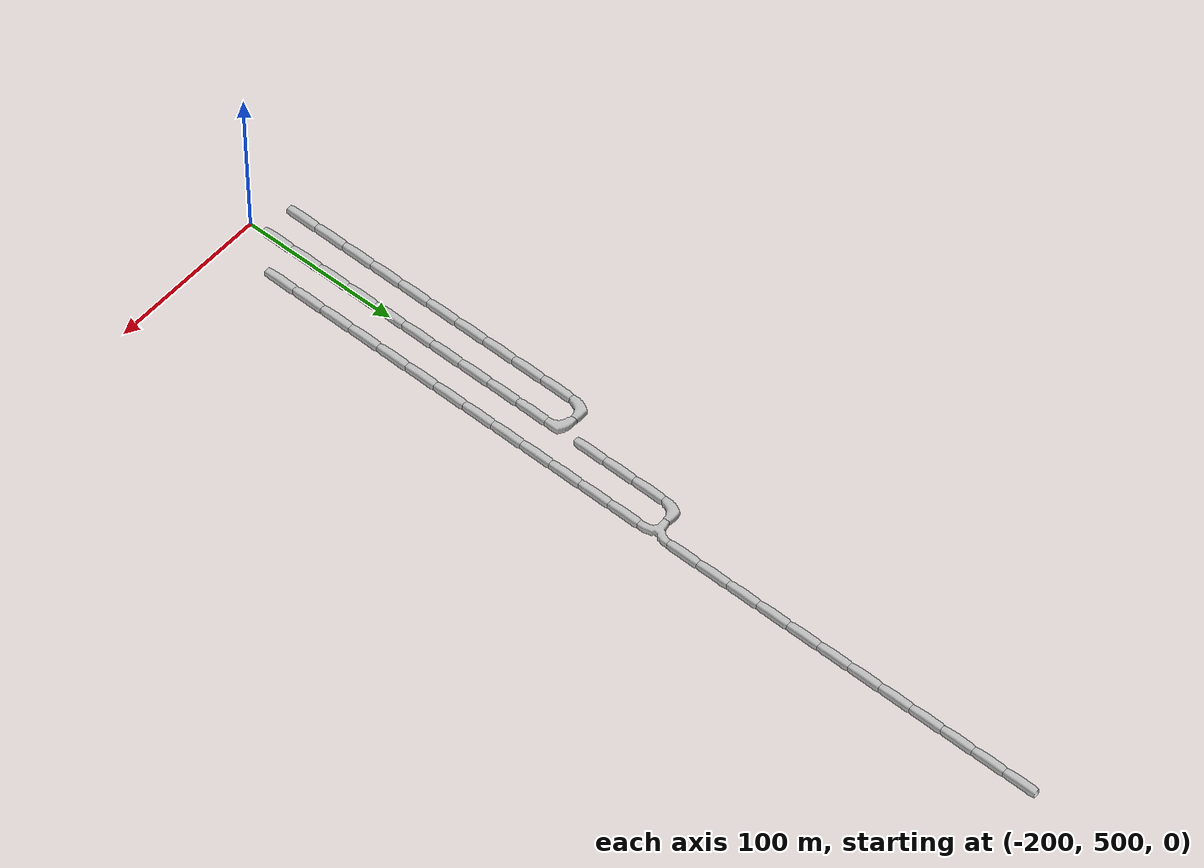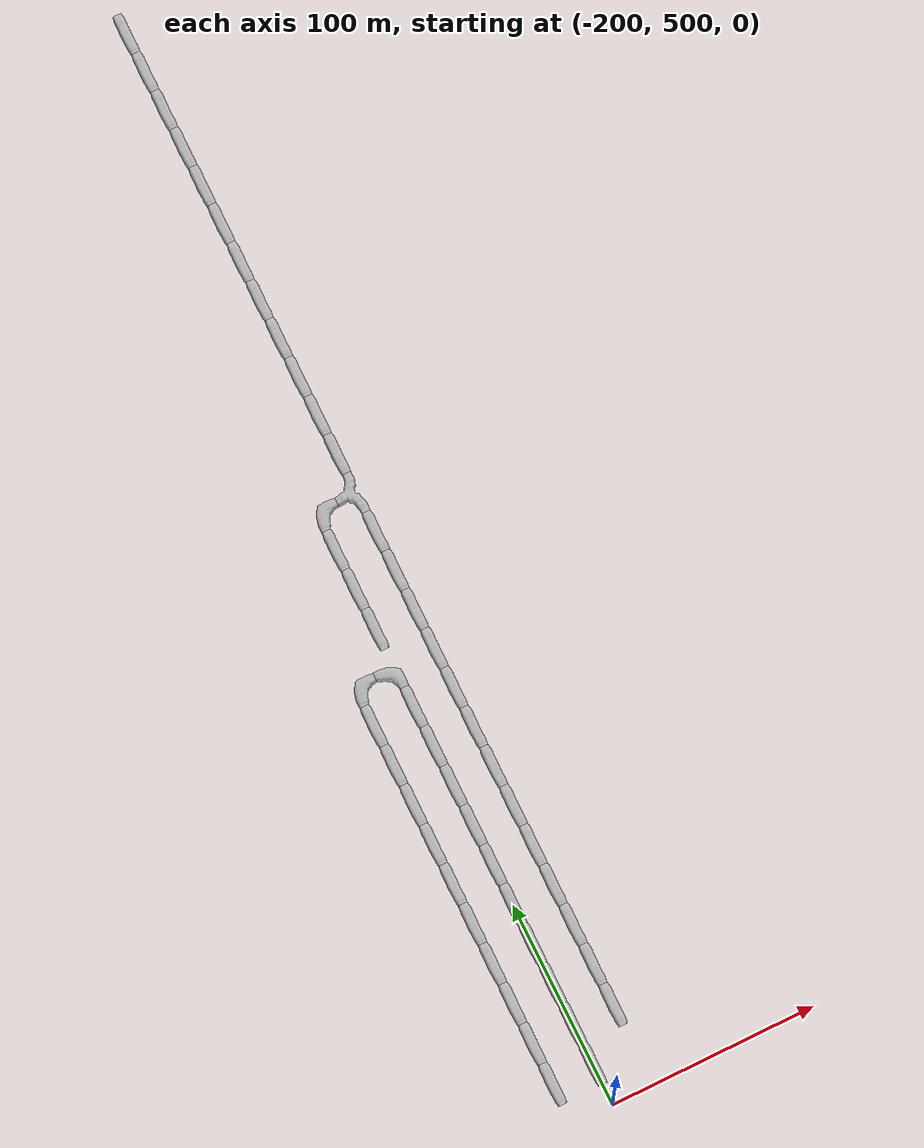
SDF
<sdf version="1.6">
 <world name="cave_8000_32">
  <include>
   <static>true</static>
   <name>cave_-9_27</name>
   <pose>-180 540 0 0 0 0.0</pose>
   <uri>model://cave_straight_20m</uri>
  </include>
  <include>
   <static>true</static>
   <name>cave_-9_28</name>
   <pose>-180 560 0 0 0 0.0</pose>
   <uri>model://cave_straight_20m</uri>
  </include>
  <include>
   <static>true</static>
   <name>cave_-9_29</name>
   <pose>-180 580 0 0 0 0.0</pose>
   <uri>model://cave_straight_20m</uri>
  </include>
  <include>
   <static>true</static>
   <name>cave_-9_30</name>
   <pose>-180 600 0 0 0 0.0</pose>
   <uri>model://cave_straight_20m</uri>
  </include>
  <include>
   <static>true</static>
   <name>cave_-9_31</name>
   <pose>-180 620 0 0 0 0.0</pose>
   <uri>model://cave_straight_20m</uri>
  </include>
  <include>
   <static>true</static>
   <name>cave_-9_32</name>
   <pose>-180 640 0 0 0 0.0</pose>
   <uri>model://cave_straight_20m</uri>
  </include>
  <include>
   <static>true</static>
   <name>cave_-9_33</name>
   <pose>-180 660 0 0 0 0.0</pose>
   <uri>model://cave_straight_20m</uri>
  </include>
  <include>
   <static>true</static>
   <name>cave_-9_34</name>
   <pose>-180 680 0 0 0 0.0</pose>
   <uri>model://cave_straight_20m</uri>
  </include>
  <include>
   <static>true</static>
   <name>cave_-9_35</name>
   <pose>-180 700 0 0 0 0.0</pose>
   <uri>model://cave_straight_20m</uri>
  </include>
  <include>
   <static>true</static>
   <name>cave_-9_36</name>
   <pose>-180 720 0 0 0 0.0</pose>
   <uri>model://cave_straight_20m</uri>
  </include>
  <include>
   <static>true</static>
   <name>cave_-9_37</name>
   <pose>-180 740 0 0 0 0.0</pose>
   <uri>model://cave_straight_20m</uri>
  </include>
  <include>
   <static>true</static>
   <name>cave_-9_38</name>
   <pose>-180 760 0 0 0 0.0</pose>
   <uri>model://cave_straight_20m</uri>
  </include>
  <include>
   <static>true</static>
   <name>cave_-9_39</name>
   <pose>-180 780 0 0 0 0.0</pose>
   <uri>model://cave_straight_20m</uri>
  </include>
  <include>
   <static>true</static>
   <name>cave_-9_40</name>
   <pose>-180 800 0 0 0 1.5707963267948966</pose>
   <uri>model://cave_3way_20m</uri>
  </include>
  <include>
   <static>true</static>
   <name>cave_-10_40</name>
   <pose>-200 800 0 0 0 -1.5707963267948966</pose>
   <uri>model://cave_L_20m</uri>
  </include>
  <include>
   <static>true</static>
   <name>cave_-10_39</name>
   <pose>-200 780 0 0 0 0.0</pose>
   <uri>model://cave_straight_20m</uri>
  </include>
  <include>
   <static>true</static>
   <name>cave_-10_38</name>
   <pose>-200 760 0 0 0 0.0</pose>
   <uri>model://cave_straight_20m</uri>
  </include>
  <include>
   <static>true</static>
   <name>cave_-10_37</name>
   <pose>-200 740 0 0 0 0.0</pose>
   <uri>model://cave_straight_20m</uri>
  </include>
  <include>
   <static>true</static>
   <name>cave_-9_41</name>
   <pose>-180 820 0 0 0 0.0</pose>
   <uri>model://cave_straight_20m</uri>
  </include>
  <include>
   <static>true</static>
   <name>cave_-9_42</name>
   <pose>-180 840 0 0 0 0.0</pose>
   <uri>model://cave_straight_20m</uri>
  </include>
  <include>
   <static>true</static>
   <name>cave_-9_43</name>
   <pose>-180 860 0 0 0 0.0</pose>
   <uri>model://cave_straight_20m</uri>
  </include>
  <include>
   <static>true</static>
   <name>cave_-9_44</name>
   <pose>-180 880 0 0 0 0.0</pose>
   <uri>model://cave_straight_20m</uri>
  </include>
  <include>
   <static>true</static>
   <name>cave_-9_45</name>
   <pose>-180 900 0 0 0 0.0</pose>
   <uri>model://cave_straight_20m</uri>
  </include>
  <include>
   <static>true</static>
   <name>cave_-9_46</name>
   <pose>-180 920 0 0 0 0.0</pose>
   <uri>model://cave_straight_20m</uri>
  </include>
  <include>
   <static>true</static>
   <name>cave_-9_47</name>
   <pose>-180 940 0 0 0 0.0</pose>
   <uri>model://cave_straight_20m</uri>
  </include>
  <include>
   <static>true</static>
   <name>cave_-9_48</name>
   <pose>-180 960 0 0 0 0.0</pose>
   <uri>model://cave_straight_20m</uri>
  </include>
  <include>
   <static>true</static>
   <name>cave_-9_49</name>
   <pose>-180 980 0 0 0 0.0</pose>
   <uri>model://cave_straight_20m</uri>
  </include>
  <include>
   <static>true</static>
   <name>cave_-9_50</name>
   <pose>-180 1000 0 0 0 0.0</pose>
   <uri>model://cave_straight_20m</uri>
  </include>
  <include>
   <static>true</static>
   <name>cave_-9_51</name>
   <pose>-180 1020 0 0 0 0.0</pose>
   <uri>model://cave_straight_20m</uri>
  </include>
  <include>
   <static>true</static>
   <name>cave_-9_52</name>
   <pose>-180 1040 0 0 0 0.0</pose>
   <uri>model://cave_straight_20m</uri>
  </include>
  <include>
   <static>true</static>
   <name>cave_-10_26</name>
   <pose>-200 520 0 0 0 0.0</pose>
   <uri>model://cave_straight_20m</uri>
  </include>
  <include>
   <static>true</static>
   <name>cave_-10_27</name>
   <pose>-200 540 0 0 0 0.0</pose>
   <uri>model://cave_straight_20m</uri>
  </include>
  <include>
   <static>true</static>
   <name>cave_-10_28</name>
   <pose>-200 560 0 0 0 0.0</pose>
   <uri>model://cave_straight_20m</uri>
  </include>
  <include>
   <static>true</static>
   <name>cave_-10_29</name>
   <pose>-200 580 0 0 0 0.0</pose>
   <uri>model://cave_straight_20m</uri>
  </include>
  <include>
   <static>true</static>
   <name>cave_-10_30</name>
   <pose>-200 600 0 0 0 0.0</pose>
   <uri>model://cave_straight_20m</uri>
  </include>
  <include>
   <static>true</static>
   <name>cave_-10_31</name>
   <pose>-200 620 0 0 0 0.0</pose>
   <uri>model://cave_straight_20m</uri>
  </include>
  <include>
   <static>true</static>
   <name>cave_-10_32</name>
   <pose>-200 640 0 0 0 0.0</pose>
   <uri>model://cave_straight_20m</uri>
  </include>
  <include>
   <static>true</static>
   <name>cave_-10_33</name>
   <pose>-200 660 0 0 0 0.0</pose>
   <uri>model://cave_straight_20m</uri>
  </include>
  <include>
   <static>true</static>
   <name>cave_-10_34</name>
   <pose>-200 680 0 0 0 0.0</pose>
   <uri>model://cave_straight_20m</uri>
  </include>
  <include>
   <static>true</static>
   <name>cave_-10_35</name>
   <pose>-200 700 0 0 0 0.0</pose>
   <uri>model://cave_straight_20m</uri>
  </include>
  <include>
   <static>true</static>
   <name>cave_-10_36</name>
   <pose>-200 720 0 0 0 3.141592653589793</pose>
   <uri>model://cave_L_20m</uri>
  </include>
  <include>
   <static>true</static>
   <name>cave_-11_36</name>
   <pose>-220 720 0 0 0 -1.5707963267948966</pose>
   <uri>model://cave_L_20m</uri>
  </include>
  <include>
   <static>true</static>
   <name>cave_-11_35</name>
   <pose>-220 700 0 0 0 0.0</pose>
   <uri>model://cave_straight_20m</uri>
  </include>
  <include>
   <static>true</static>
   <name>cave_-11_34</name>
   <pose>-220 680 0 0 0 0.0</pose>
   <uri>model://cave_straight_20m</uri>
  </include>
  <include>
   <static>true</static>
   <name>cave_-11_33</name>
   <pose>-220 660 0 0 0 0.0</pose>
   <uri>model://cave_straight_20m</uri>
  </include>
  <include>
   <static>true</static>
   <name>cave_-11_32</name>
   <pose>-220 640 0 0 0 0.0</pose>
   <uri>model://cave_straight_20m</uri>
  </include>
  <include>
   <static>true</static>
   <name>cave_-11_31</name>
   <pose>-220 620 0 0 0 0.0</pose>
   <uri>model://cave_straight_20m</uri>
  </include>
  <include>
   <static>true</static>
   <name>cave_-11_30</name>
   <pose>-220 600 0 0 0 0.0</pose>
   <uri>model://cave_straight_20m</uri>
  </include>
  <include>
   <static>true</static>
   <name>cave_-11_29</name>
   <pose>-220 580 0 0 0 0.0</pose>
   <uri>model://cave_straight_20m</uri>
  </include>
  <include>
   <static>true</static>
   <name>cave_-11_28</name>
   <pose>-220 560 0 0 0 0.0</pose>
   <uri>model://cave_straight_20m</uri>
  </include>
  <include>
   <static>true</static>
   <name>cave_-11_27</name>
   <pose>-220 540 0 0 0 0.0</pose>
   <uri>model://cave_straight_20m</uri>
  </include>
  <include>
   <static>true</static>
   <name>cave_-11_26</name>
   <pose>-220 520 0 0 0 0.0</pose>
   <uri>model://cave_straight_20m</uri>
  </include>
 </world>
</sdf>
